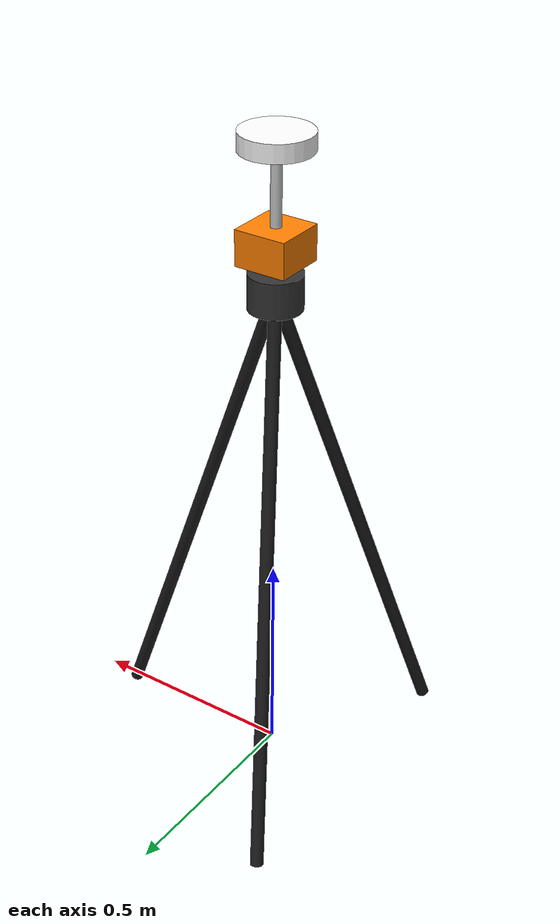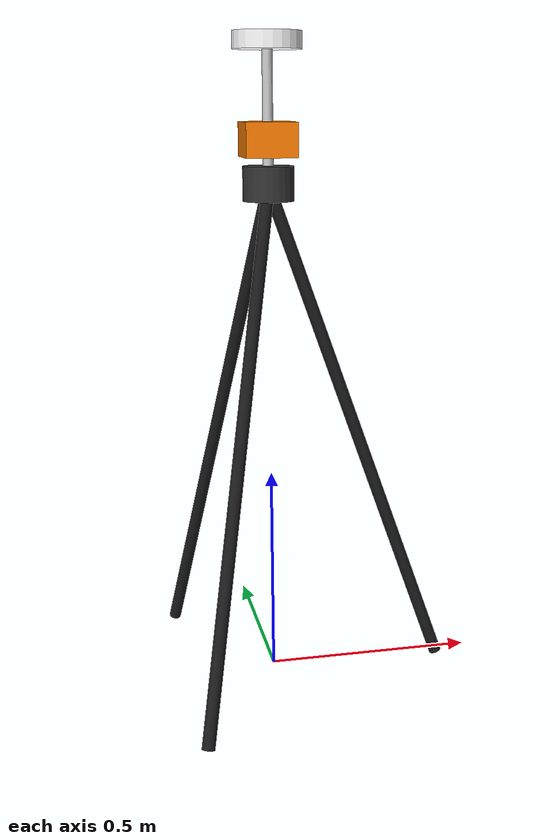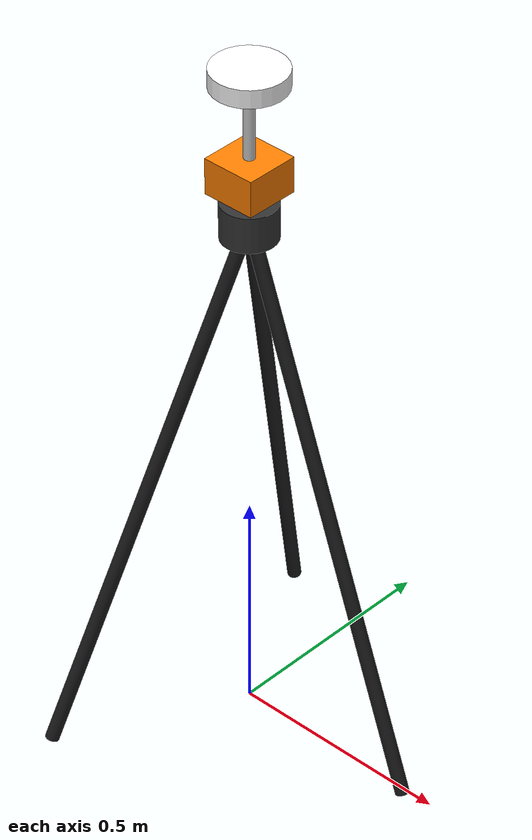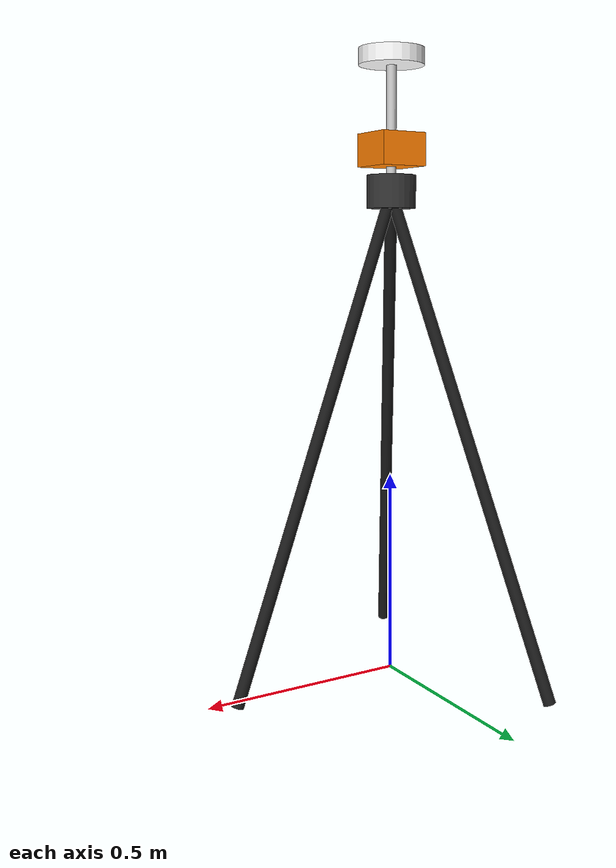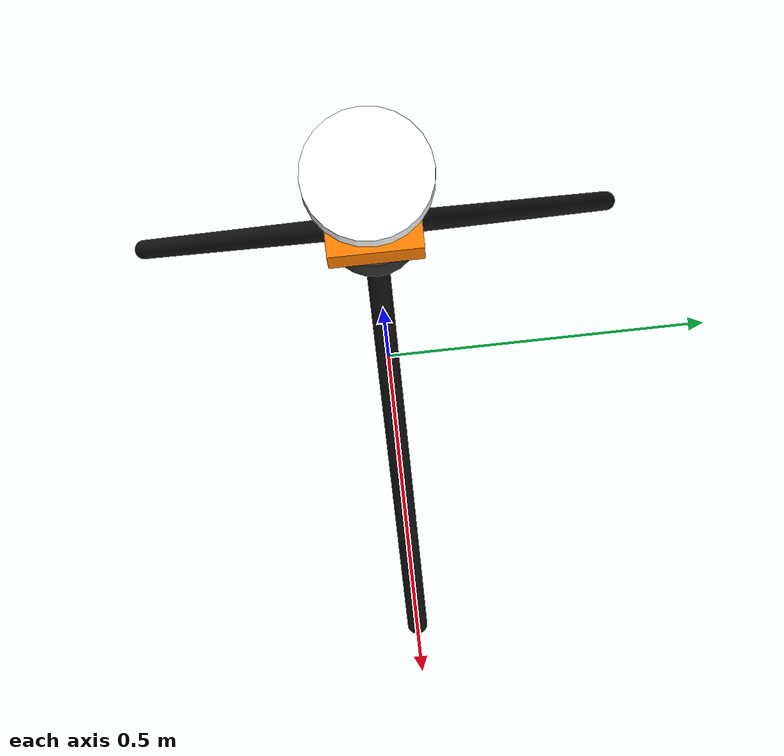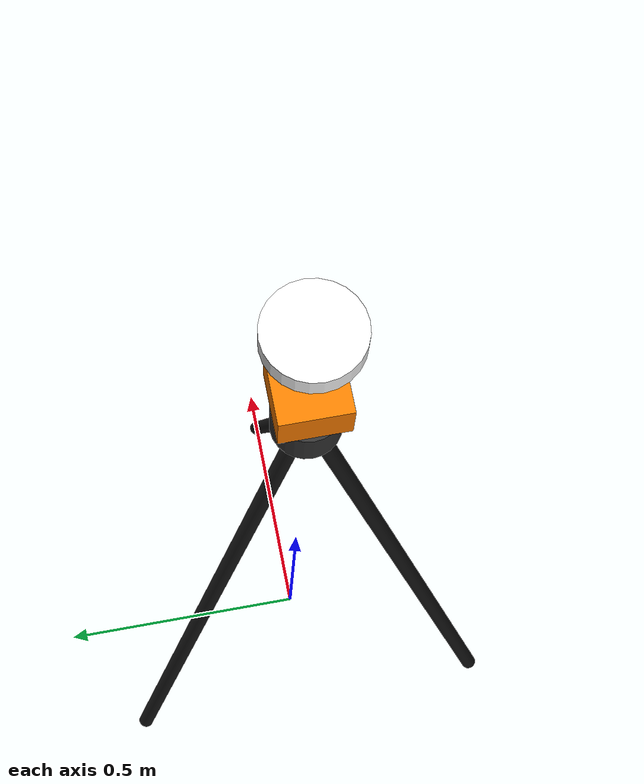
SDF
<?xml version="1.0" ?>
<sdf version="1.9">
  <model name="rtk_base_station">
    <static>true</static>

    <link name="base_link">

      <visual name="hub_visual">
        <pose>0 0 1.2 0 0 0</pose>
        <geometry><cylinder><radius>0.06</radius><length>0.08</length></cylinder></geometry>
        <material><ambient>0.2 0.2 0.2 1</ambient><diffuse>0.2 0.2 0.2 1</diffuse></material>
      </visual>
      <collision name="hub_collision">
        <pose>0 0 1.2 0 0 0</pose>
        <geometry><cylinder><radius>0.06</radius><length>0.08</length></cylinder></geometry>
      </collision>

      <visual name="leg1_visual">
        <pose>0.21 0 0.6 0 -0.34 0</pose>
        <geometry><cylinder><radius>0.015</radius><length>1.3</length></cylinder></geometry>
        <material><ambient>0.1 0.1 0.1 1</ambient><diffuse>0.1 0.1 0.1 1</diffuse></material>
      </visual>
      <collision name="leg1_collision">
        <pose>0.21 0 0.6 0 -0.34 0</pose>
        <geometry><cylinder><radius>0.015</radius><length>1.3</length></cylinder></geometry>
      </collision>

      <visual name="leg2_visual">
        <pose>-0.105 0.1818 0.6 0 -0.34 2.0944</pose>
        <geometry><cylinder><radius>0.015</radius><length>1.3</length></cylinder></geometry>
        <material><ambient>0.1 0.1 0.1 1</ambient><diffuse>0.1 0.1 0.1 1</diffuse></material>
      </visual>
      <collision name="leg2_collision">
        <pose>-0.105 0.1818 0.6 0 -0.34 2.0944</pose>
        <geometry><cylinder><radius>0.015</radius><length>1.3</length></cylinder></geometry>
      </collision>

      <visual name="leg3_visual">
        <pose>-0.105 -0.1818 0.6 0 -0.34 -2.0944</pose>
        <geometry><cylinder><radius>0.015</radius><length>1.3</length></cylinder></geometry>
        <material><ambient>0.1 0.1 0.1 1</ambient><diffuse>0.1 0.1 0.1 1</diffuse></material>
      </visual>
      <collision name="leg3_collision">
        <pose>-0.105 -0.1818 0.6 0 -0.34 -2.0944</pose>
        <geometry><cylinder><radius>0.015</radius><length>1.3</length></cylinder></geometry>
      </collision>

      <visual name="stalk_visual">
        <pose>0 0 1.35 0 0 0</pose>
        <geometry><cylinder><radius>0.012</radius><length>0.3</length></cylinder></geometry>
        <material><ambient>0.7 0.7 0.7 1</ambient><diffuse>0.8 0.8 0.8 1</diffuse></material>
      </visual>
      <collision name="stalk_collision">
        <pose>0 0 1.35 0 0 0</pose>
        <geometry><cylinder><radius>0.012</radius><length>0.3</length></cylinder></geometry>
      </collision>

      <visual name="receiver_box_visual">
        <pose>0 0 1.3 0 0 0</pose>
        <geometry><box><size>0.12 0.12 0.08</size></box></geometry>
        <material><ambient>0.9 0.4 0.0 1</ambient><diffuse>1.0 0.5 0.0 1</diffuse></material>
      </visual>
      <collision name="receiver_box_collision">
        <pose>0 0 1.3 0 0 0</pose>
        <geometry><box><size>0.12 0.12 0.08</size></box></geometry>
      </collision>

      <visual name="antenna_visual">
        <pose>0 0 1.52 0 0 0</pose>
        <geometry><cylinder><radius>0.08</radius><length>0.04</length></cylinder></geometry>
        <material><ambient>0.9 0.9 0.9 1</ambient><diffuse>1.0 1.0 1.0 1</diffuse></material>
      </visual>
      <collision name="antenna_collision">
        <pose>0 0 1.52 0 0 0</pose>
        <geometry><cylinder><radius>0.08</radius><length>0.04</length></cylinder></geometry>
      </collision>

      <sensor name="navsat_sensor" type="navsat">
        <always_on>1</always_on>
        <update_rate>1</update_rate>
      </sensor>
    </link>
  </model>
</sdf>
